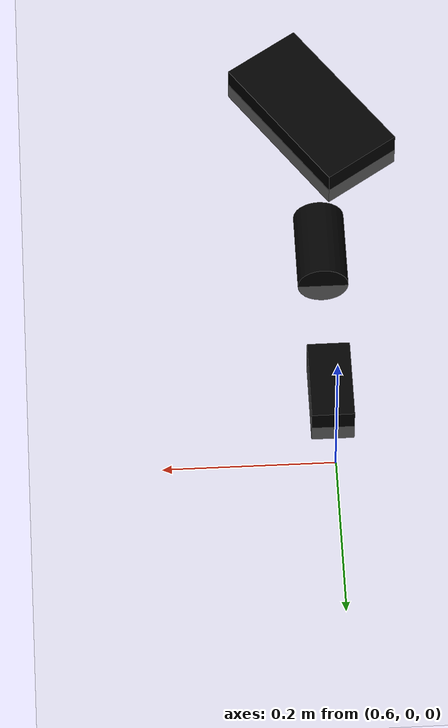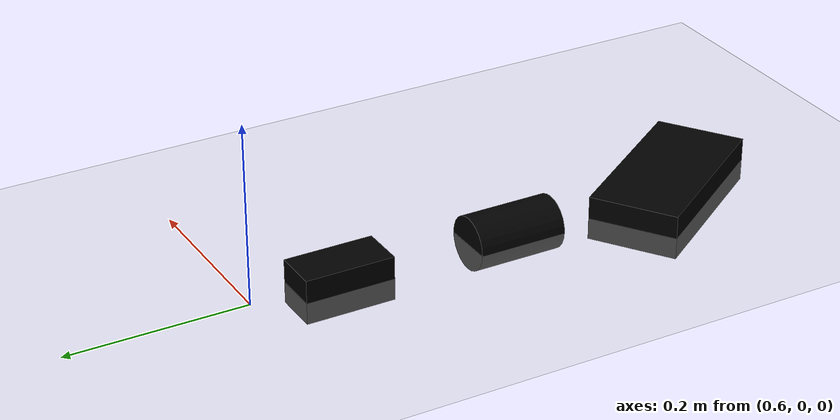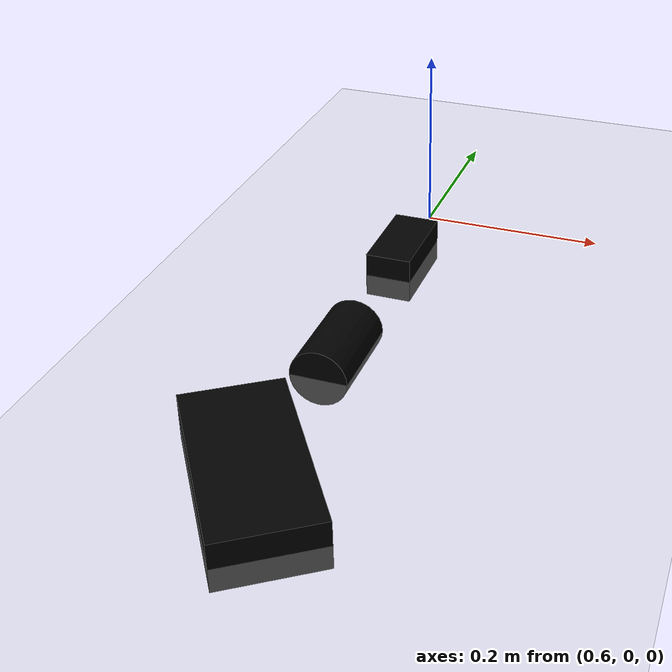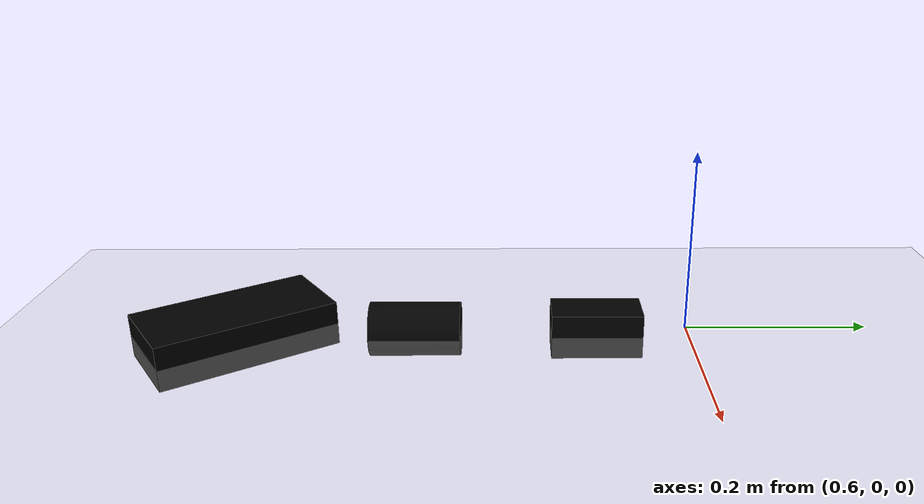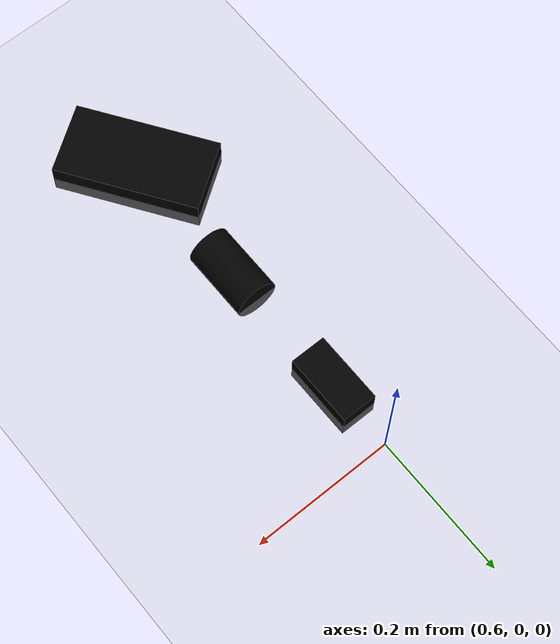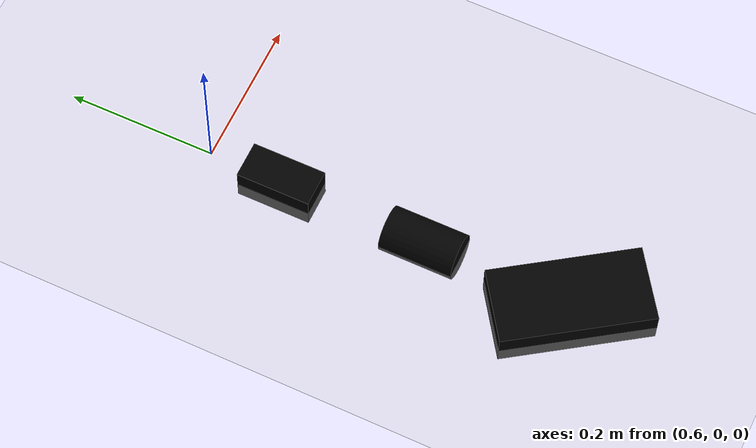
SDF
<sdf version="1.7">
 <world name="default">
  <model name="ground_plane">
   <static>1</static>
   <link name="link">
    <collision name="collision">
     <geometry><plane><normal>0 0 1</normal><size>100 100</size></plane></geometry>
     <surface>
      <contact><collide_bitmask>65535</collide_bitmask></contact>
      <friction><ode><mu>100</mu><mu2>50</mu2></ode></friction>
     </surface>
    </collision>
    <visual name="visual">
     <cast_shadows>0</cast_shadows>
     <geometry><plane><normal>0 0 1</normal><size>100 100</size></plane></geometry>
     <material>
      <script><uri>file://media/materials/scripts/gazebo.material</uri><name>Gazebo/Grey</name></script>
     </material>
    </visual>
   </link>
  </model>
  <light name="sun" type="directional">
   <pose>0 0 10 0 -0 0</pose>
   <diffuse>0.8 0.8 0.8 1</diffuse>
   <specular>0.2 0.2 0.2 1</specular>
   <attenuation>
    <range>1000</range>
    <constant>0.9</constant>
    <linear>0.01</linear>
    <quadratic>0.001</quadratic>
   </attenuation>
   <direction>-0.5 0.791 -0.9</direction>
   <spot><inner_angle>0</inner_angle><outer_angle>0</outer_angle><falloff>0</falloff></spot>
  </light>
  <model name="cylinder1">
   <pose>0.6 -0.3 0 1.5708 -0 0</pose>
   <link name="link">
    <collision name="collision">
     <geometry><cylinder><length>0.1</length><radius>0.03</radius></cylinder></geometry>
     <surface><friction><ode><mu>0</mu><mu2>0</mu2></ode></friction></surface>
    </collision>
    <visual name="visual">
     <geometry><cylinder><length>0.1</length><radius>0.03</radius></cylinder></geometry>
     <material><ambient>0 0 1 1</ambient><diffuse>0 0 0 1</diffuse></material>
    </visual>
    <inertial>
     <inertia><ixx>1</ixx><ixy>0</ixy><ixz>0</ixz><iyy>1</iyy><iyz>0</iyz><izz>1</izz></inertia>
     <mass>1</mass>
    </inertial>
   </link>
   <plugin name="model_push" filename="librrbot_gazebo.so"/>
  </model>
  <model name="box1">
   <pose>0.6 -0.1 0 0 -0 0</pose>
   <link name="link">
    <collision name="collision">
     <geometry><box><size>0.05 0.1 0.05</size></box></geometry>
     <surface><friction><ode><mu>0</mu><mu2>0</mu2></ode></friction></surface>
    </collision>
    <visual name="visual">
     <geometry><box><size>0.05 0.1 0.05</size></box></geometry>
     <material><ambient>1 0 0 1</ambient><diffuse>0 0 0 1</diffuse></material>
    </visual>
    <inertial>
     <inertia><ixx>1</ixx><ixy>0</ixy><ixz>0</ixz><iyy>1</iyy><iyz>0</iyz><izz>1</izz></inertia>
     <mass>1</mass>
    </inertial>
   </link>
   <plugin name="model_push" filename="librrbot_gazebo.so"/>
  </model>
  <model name="box2">
   <pose>0.6 -0.5 0 0 -0 0.6</pose>
   <link name="link">
    <collision name="collision">
     <geometry><box><size>0.1 0.2 0.05</size></box></geometry>
     <surface><friction><ode><mu>0</mu><mu2>0</mu2></ode></friction></surface>
    </collision>
    <visual name="visual">
     <geometry><box><size>0.1 0.2 0.05</size></box></geometry>
     <material><ambient>0 1 0 1</ambient><diffuse>0 0 0 1</diffuse></material>
    </visual>
    <inertial>
     <inertia><ixx>1</ixx><ixy>0</ixy><ixz>0</ixz><iyy>1</iyy><iyz>0</iyz><izz>1</izz></inertia>
     <mass>1</mass>
    </inertial>
   </link>
   <plugin name="model_push" filename="librrbot_gazebo.so"/>
  </model>
  <gravity>0 0 -9.8</gravity>
  <magnetic_field>6e-06 2.3e-05 -4.2e-05</magnetic_field>
  <atmosphere type="adiabatic"/>
  <physics type="ode">
   <max_step_size>0.001</max_step_size>
   <real_time_factor>1</real_time_factor>
   <real_time_update_rate>1000</real_time_update_rate>
  </physics>
  <scene><ambient>0.4 0.4 0.4 1</ambient><background>0.7 0.7 0.7 1</background><shadows>1</shadows></scene>
  <spherical_coordinates>
   <surface_model>EARTH_WGS84</surface_model>
   <latitude_deg>0</latitude_deg>
   <longitude_deg>0</longitude_deg>
   <elevation>0</elevation>
   <heading_deg>0</heading_deg>
  </spherical_coordinates>
  <light name="user_spot_light_0" type="spot">
   <pose>0.579349 0.016423 1 0 -0 0</pose>
   <diffuse>0.5 0.5 0.5 1</diffuse>
   <specular>0.1 0.1 0.1 1</specular>
   <direction>0 0 -1</direction>
   <attenuation>
    <range>20</range>
    <constant>0.5</constant>
    <linear>0.01</linear>
    <quadratic>0.001</quadratic>
   </attenuation>
   <cast_shadows>0</cast_shadows>
   <spot><inner_angle>0.6</inner_angle><outer_angle>1</outer_angle><falloff>1</falloff></spot>
  </light>
 </world>
</sdf>
